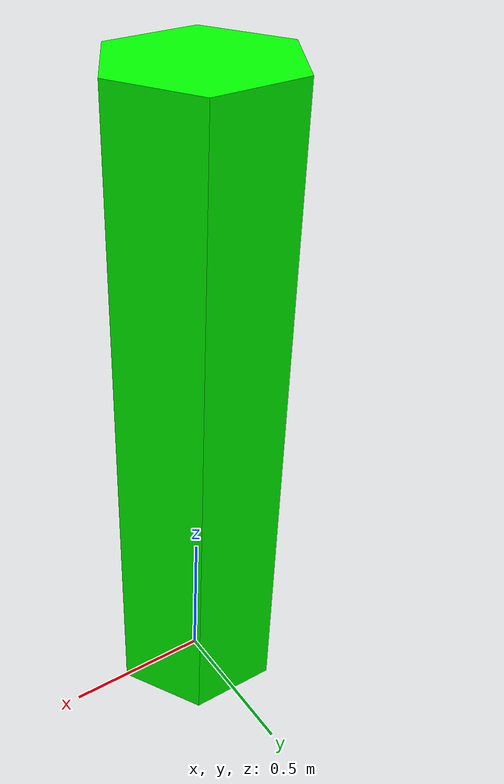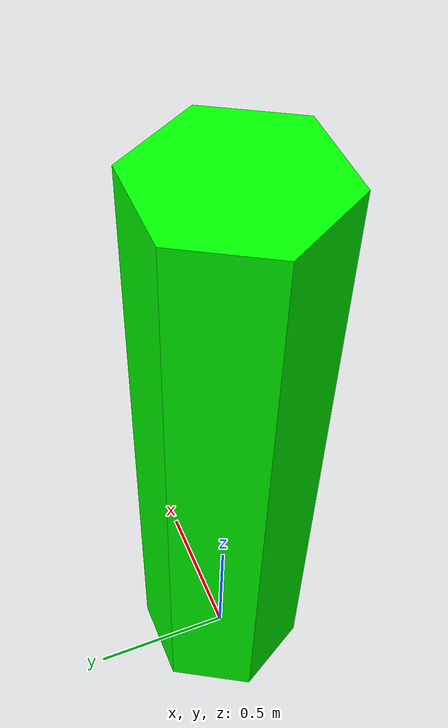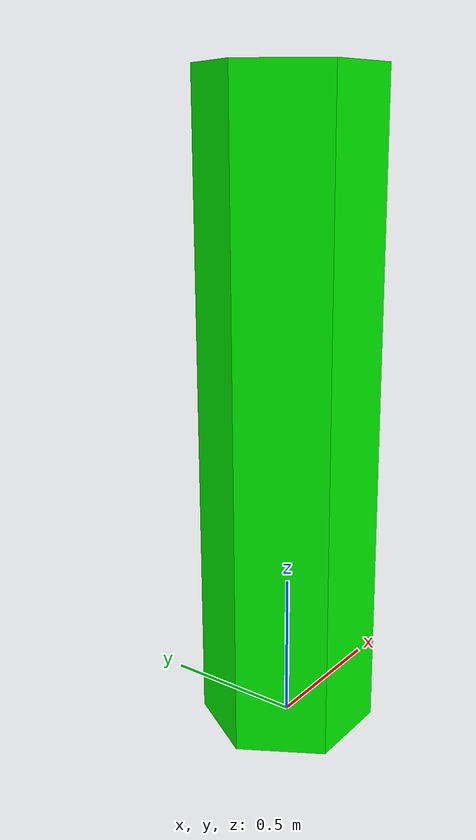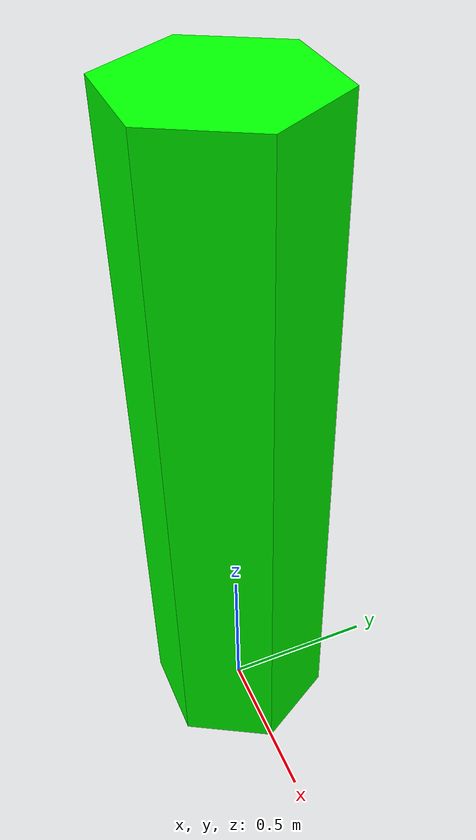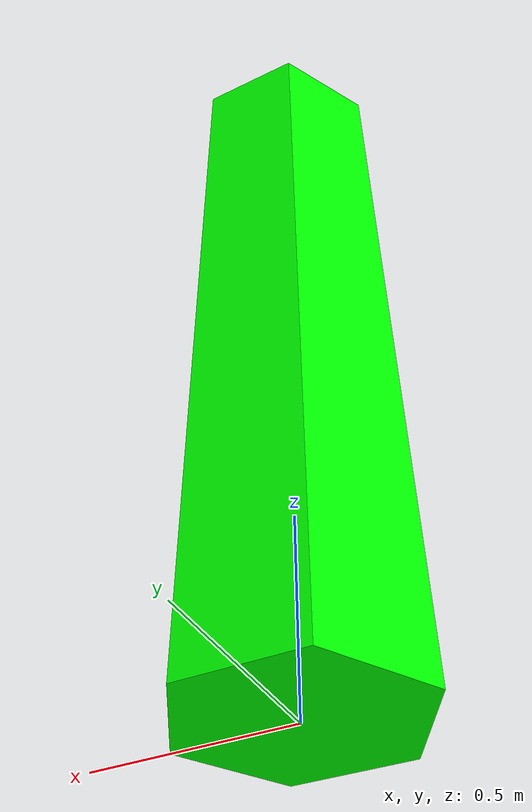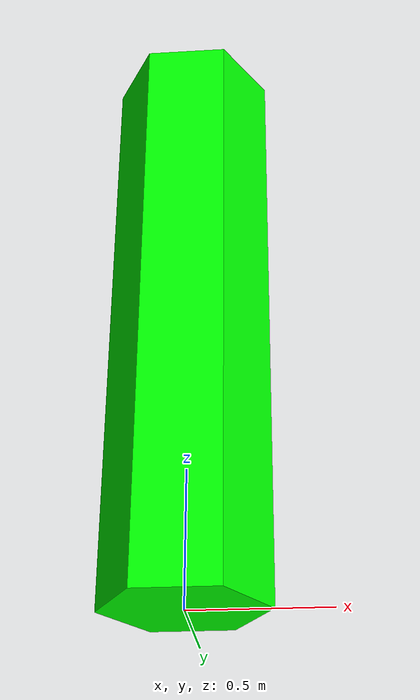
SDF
<?xml version="1.0" ?>
<sdf version="1.5">
  <model name="unknown_obst_2">
    <static>true</static>
    <link name="link">
      <pose>0 0 0 0 0 0</pose>
      <collision name="collision">
        <geometry>
            <mesh>
              <uri>
                model://unknown_obst_2/mesh/unknown_obst_low.stl
              </uri>
              <scale>
                0.001 0.001 0.001
              </scale>
            </mesh>
        </geometry>
      </collision>
      <visual name="visual">
        <cast_shadows>true</cast_shadows>
        <geometry>
            <mesh>
              <uri>
                model://unknown_obst_2/mesh/unknown_obst_low.stl
              </uri>
              <scale>
                0.001 0.001 0.001
              </scale>
            </mesh>
        </geometry>
        <material> <!-- color soft yellow -->
          <ambient>0 1 0 1</ambient>
          <diffuse>0 1 0 1</diffuse>
          <specular>0 0 0 0</specular>
          <emissive>0 0 0 1</emissive>
        </material>
      </visual>
    </link>
  </model>
</sdf>
